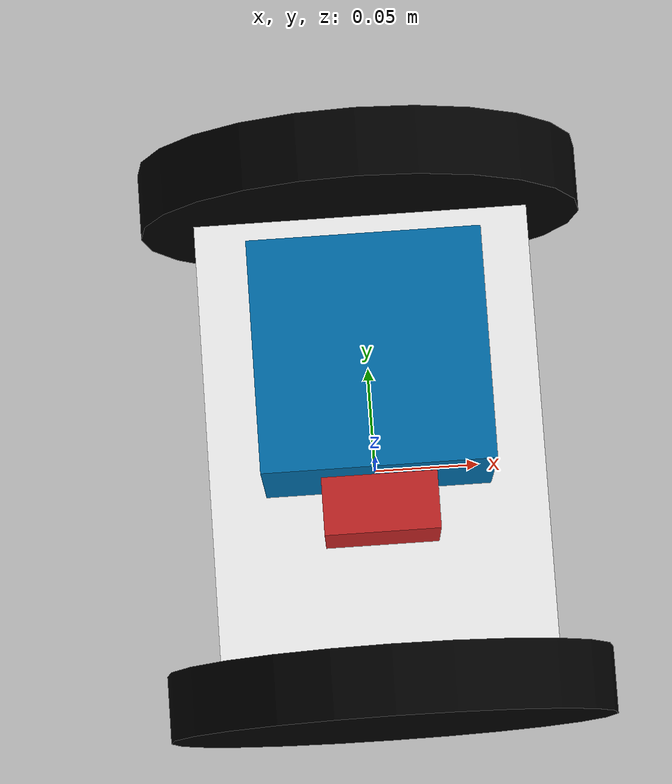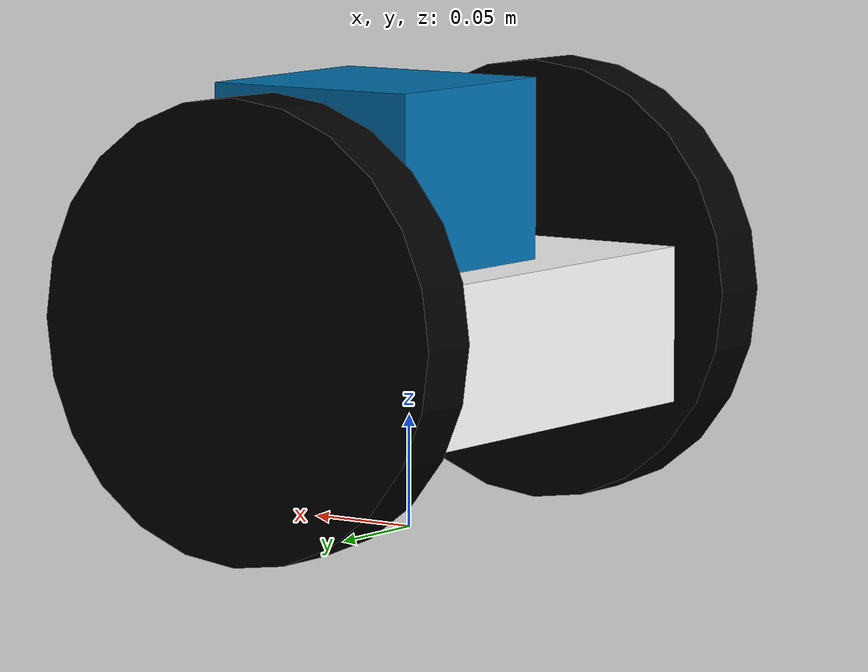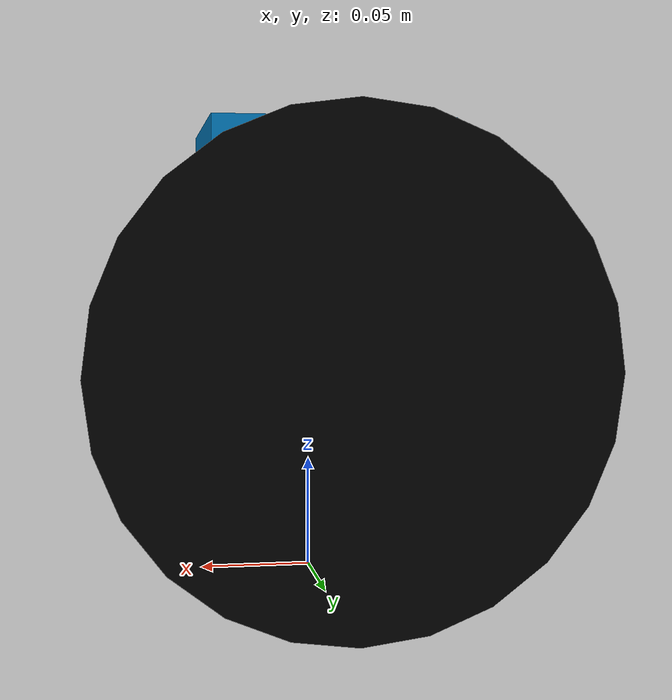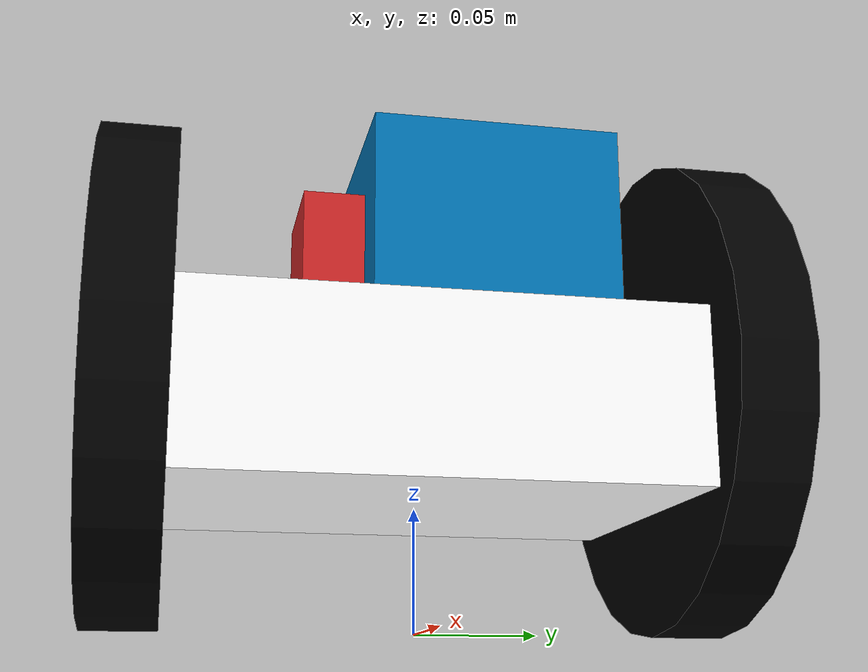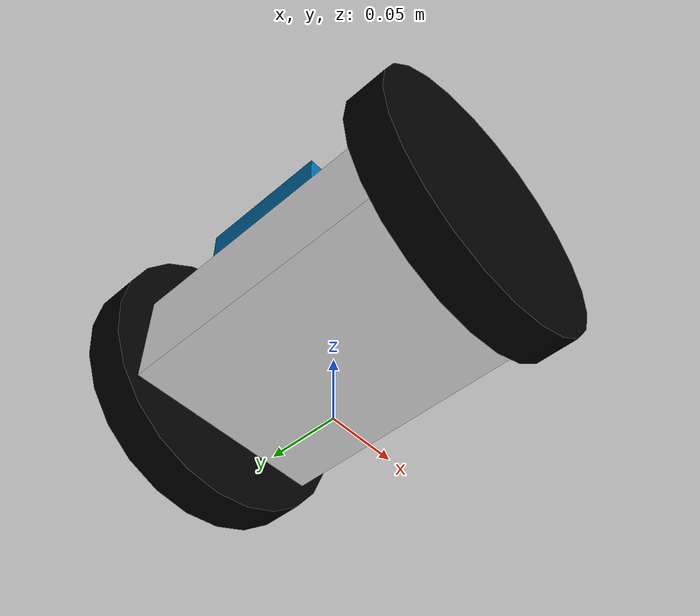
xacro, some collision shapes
<?xml version="1.0"?>

<robot xmlns:xacro="http://www.ros.org/wiki/xacro" name="robot_model">
    <!-- impoer file parameter เข้ามาจากโฟลเดอร์เพื่อใช้รวมกับไฟล์นี้ เป็นไฟล์กำหนดค่าตัวแปรต่างๆ -->
    <xacro:include filename="$(find ros_pack)/models/parameter.xacro"/>
    <!-- impoer file ที่ใช้เพื่อประกอบเป็นหุ่น -->
    <xacro:include filename="$(find ros_pack)/models/body.xacro"/>
    <xacro:include filename="$(find ros_pack)/models/wheel.xacro"/>
     <!-- impoer file กล้องและlidar เพื่อมาประกอบและใช้งานกับตัวหุ่น -->
    <xacro:include filename="$(find ros_pack)/lidar/lidar.xacro"/>
    <xacro:include filename="$(find ros_pack)/camera/camera.xacro"/>
    <!-- กำหนดค่าตัวแปรที่ต้องใช้ เช่น ระยะที่ทำการเลื่อนเฟรม และชื่อของเฟรมนั้นๆ -->
    <xacro:body/>
    <xacro:wheel
        name="right_wheel"
        translation="0.0 ${-((bodyLenght / 2) + 0.015)} 0.0"
        rotation="0.0 0.0 0.0"/>
    <xacro:wheel
        name="left_wheel"
        translation="0.0 ${(bodyLenght / 2) + 0.015} 0.0"
        rotation="0.0 0.0 0.0"/>

    <xacro:plidar/>
    <xacro:camera/>

</robot>

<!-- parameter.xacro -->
<!-- ระบุว่าใช้ .xacro ในการเขียน -->
<robot xmlns:xacro="http://www.ros.org/wiki/xacro">

    <!-- ค่า pi ในทางคณิตศาสตร์ -->
    <xacro:property name="PI" value="3.1415926535897931"></xacro:property>
    <!-- ตัวแปรกำหนดความกว้างของตัวหุ่น และคววามเร็วของล้อ รวมถึง damp -->
    <xacro:property name="bodyLenght" value="0.20"></xacro:property>
    <xacro:property name="U_MAX" value="10.0"></xacro:property>
    <xacro:property name="V_MAX" value="20.0"></xacro:property>
    <xacro:property name="WHEEL_JOINT_DAMP" value="0.3"></xacro:property>
    <!-- กำหนดค่า inertia and center of mass ของตัวหุ่น -->
    <xacro:property name="BASE_COM" value="0 0 -0.015"></xacro:property>
    <xacro:property name="BASE_M" value="6"></xacro:property>
    <xacro:property name="BASE_Ixx" value="0.009607873"></xacro:property>
    <xacro:property name="BASE_Ixy" value="0.00018491"></xacro:property>
    <xacro:property name="BASE_Ixz" value="0.000352663"></xacro:property>
    <xacro:property name="BASE_Iyy" value="0.010242986"></xacro:property>
    <xacro:property name="BASE_Iyz" value="0.00027809"></xacro:property>
    <xacro:property name="BASE_Izz" value="0.009654254"></xacro:property>
    <!-- กำหนดค่า inertia and center of mass ของล้อ -->
    <xacro:property name="WHEEL_COM" value="0 0 0"></xacro:property>
    <xacro:property name="WHEEL_M" value="0.3"></xacro:property>
    <xacro:property name="WHEEL_Ixx" value="0.00012052"></xacro:property>
    <xacro:property name="WHEEL_Ixy" value="0.0"></xacro:property>
    <xacro:property name="WHEEL_Ixz" value="0.0"></xacro:property>
    <xacro:property name="WHEEL_Iyy" value="0.0029397"></xacro:property>
    <xacro:property name="WHEEL_Iyz" value="0.0"></xacro:property>
    <xacro:property name="WHEEL_Izz" value="0.00012052"></xacro:property>
    <!-- กำหนดค่าขนาดความกว้างของกล้อง -->
    <xacro:property name="camera_link" value="0.05" />

</robot>

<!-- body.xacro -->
<!-- ระบุว่าใช้ .xacro ในการเขียน -->
<robot xmlns:xacro="http://www.ros.org/wiki/xacro" name="robot_body">

    <xacro:macro name="body" params="">
        <link name="base_footprint"/>
        <!--กำหนด joint ในการเชื่อมต่อระหว่าง base foot print and base link(ตัวหุ่น)-->
        <joint name="base_footprint_to_base_link" type="fixed">
            <parent link="base_footprint"/>
            <child link="base_link"/>
            <origin rpy="0.0 0.0 0.0" xyz="0.0 0.0 0.10"/>
        </joint>

        <link name="base_link">
            <!--สร้างตัวหุ่นทรงสี่เหลี่ยมผืนผ้า ขนาด 15*20*7 เซนติเมตร และกำหนดให้เป็นสีขาว รวมทั้งกำหนดค่า ineertia and center of mass ให้หุ่นยนต์ ใส่ค่า colllision ในกับหุ่นเป็นการเพิ่ม gavity-->
            <visual>
                <geometry>
                    <box size="0.15 0.20 0.07"/>
                </geometry>
                <origin rpy="0.0 0.0 0.0" xyz="0.0 0.0 -0.015"/>
                <material name="white">
                    <color rgba="1.0 1.0 1.0 1.0"/>
                </material>
            </visual>

            <inertial>
                <origin xyz="${BASE_COM}" rpy="0.0 0.0 0.0"/>
                <mass value="${BASE_M}"/>
                <inertia ixx="${BASE_Ixx}" ixy="${BASE_Ixy}" ixz="${BASE_Ixz}" iyy="${BASE_Iyy}" iyz="${BASE_Iyz}" izz="${BASE_Izz}"/>
            </inertial>
            <collision>
                <geometry>
                    <box size="0.15 0.20 0.07"/>
                </geometry>
                <origin rpy="0.0 0.0 0.0" xyz="0.0 0.0 -0.015"/>
            </collision>
        </link>

        <gazebo reference="base_link">
            <mu1>0.3</mu1>
            <mu2>0.3</mu2>
        </gazebo>

    </xacro:macro>
</robot>

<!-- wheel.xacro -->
<!-- ระบุว่าใช้ .xacro ในการเขียน -->
<robot xmlns:xacro="http://www.ros.org/wiki/xacro" name="robot_wheel">
    <!-- impoer file parameter เข้ามาจากโฟลเดอร์เพื่อใช้รวมกับไฟล์นี้ เป็นไฟล์กำหนดค่าตัวแปรต่างๆ -->
    <xacro:include filename="$(find ros_pack)/models/parameter.xacro"/>

    <xacro:macro name="wheel" params="name translation rotation">
        <link name="${name}">
            <visual>
                <geometry>
                    <cylinder length="0.03" radius="0.10"/>
                </geometry>
                <origin rpy="${-PI / 2} 0.0 0.0" xyz="0.0 0.0 0.0"/>
                <!---"${rpy_link}" xyz="${xyz_link}"/-->
                <material name="black">
                    <color rgba="0 0 0 1"/>
                </material>
            </visual>
            <inertial>
                <origin xyz="${WHEEL_COM}" rpy="0.0 0.0 0.0"/>
                <mass value="${WHEEL_M}"/>
                <inertia ixx="${WHEEL_Ixx}" ixy="${WHEEL_Ixy}" ixz="${WHEEL_Ixz}" iyy="${WHEEL_Iyy}" iyz="${WHEEL_Iyz}" izz="${WHEEL_Izz}"/>
            </inertial>
            <collision>
                <geometry>
                    <cylinder length="0.03" radius="0.10"/>
                </geometry>
                <origin rpy="${-PI / 2} 0.0 0.0" xyz="0.0 0.0 0.0"/>
                <!---"${rpy_link}" xyz="${xyz_link}"/-->
            </collision>
        </link>

        <joint name="base_link_to_${name}" type="continuous">
            <axis xyz="0.0 1.0 0.0"/>
            <parent link="base_link"/>
            <child link="${name}"/>
            <origin xyz="${translation}" rpy="${rotation}"/>
            <limit effort="${U_MAX}" velocity="${V_MAX}"/>
            <joint_properties damping="${WHEEL_JOINT_DAMP}" friction="0.0"/>
        </joint>

        <gazebo reference="${name}_wheel">
            <mu1>1</mu1>
            <mu2>1</mu2>
        </gazebo>
        <!--plugin สำหรับ differential_drive_controller-->
        <gazebo>
            <plugin name="differential_drive_controller" filename="libgazebo_ros_diff_drive.so">

                <updateRate>10</updateRate>

                <robotBaseFrame>base_link</robotBaseFrame>
                <leftJoint>base_link_to_left_wheel</leftJoint>
                <rightJoint>base_link_to_right_wheel</rightJoint>

                <wheelSeparation>0.065</wheelSeparation>
                <wheelDiameter>0.1</wheelDiameter>
                <wheelAcceleration>0.5</wheelAcceleration>
                <wheelTorque>10.0</wheelTorque>

                <commandTopic>key_teleop</commandTopic>
                <odometryTopic>odom</odometryTopic>
                <odometryFrame>odom</odometryFrame>
                <publishTf>1</publishTf>
                <publishWheelJointState>true</publishWheelJointState>
                <legacyMode>false</legacyMode>

            </plugin>
        </gazebo>

    </xacro:macro>
</robot>

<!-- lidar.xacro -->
<!--plugin camera และลิ้งที่ทำการเชื่อมต่อกับหุ่น (base link)-->
<robot xmlns:xacro="http://www.ros.org/wiki/xacro" name="plidar">

    <xacro:macro name="plidar" params="">
        <joint name="hokuyo_joint" type="fixed">
            <axis xyz="0 1 0" />
            <origin xyz="0 0.025 0.05" rpy="0 0 0"/>
            <parent link="base_link"/>
            <child link="hokuyo_link"/>
        </joint>

        <!-- Hokuyo Laser -->
        <link name="hokuyo_link">
            <collision>
                <origin xyz="0 0 0" rpy="0 0 0"/>
                <geometry>
                <box size="0.1 0.1 0.1"/>
                </geometry>
            </collision>

            <visual>
                <origin xyz="0 0 0" rpy="0 0 0"/>
                <geometry>
                    <mesh filename="package://ros_pack/lidar/hokuyo.dae"/>
                </geometry>
            </visual>

            <inertial>
                <mass value="1e-5" />
                <origin xyz="0 0 0" rpy="0 0 0"/>
                <inertia ixx="1e-6" ixy="0" ixz="0" iyy="1e-6" iyz="0" izz="1e-6" />
            </inertial>
        </link>

        <!-- hokuyo -->
        <gazebo reference="hokuyo_link">
            <sensor type="gpu_ray" name="head_hokuyo_sensor">
            <pose>0 0 0 0 0 0</pose>
            <visualize>true</visualize>
            <update_rate>40</update_rate>
            <ray>
                <scan>
                <horizontal>
                    <samples>720</samples>
                    <resolution>1</resolution>
                    <min_angle>-1.570796</min_angle>
                    <max_angle>1.570796</max_angle>
                </horizontal>
                </scan>
                <range>
                <min>0.10</min>
                <max>30.0</max>
                <resolution>0.01</resolution>
                </range>
                <noise>
                <type>gaussian</type>
                <mean>0.0</mean>
                <stddev>0.01</stddev>
                </noise>
            </ray>
            <plugin name="gazebo_ros_head_hokuyo_controller" filename="libgazebo_ros_gpu_laser.so">
                <topicName>/my_robot/laser/scan</topicName>
                <frameName>hokuyo_link</frameName>
            </plugin>
            </sensor>
        </gazebo>
    </xacro:macro>

</robot>

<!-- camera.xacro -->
<!--plugin camera และลิ้งที่ทำการเชื่อมต่อกับหุ่น (base link)-->
<robot xmlns:xacro="http://www.ros.org/wiki/xacro" name="camera">
    <xacro:include filename="$(find ros_pack)/models/parameter.xacro"/>
    <xacro:include filename="$(find ros_pack)/camera/camera_plugin_gazebo.gazebo"/>

    <xacro:macro name="camera" params="">
        <joint name="camera_joint" type="fixed">
            <axis xyz="0 1 0" />
            <origin xyz="0 -0.025 0.05" rpy="0 0 0"/>
            <parent link="base_link"/>
            <child link="camera_link"/>
        </joint>

        <!-- Camera -->
        <link name="camera_link">
            <collision>
                <origin xyz="0 0 0" rpy="0 0 0"/>
                <geometry>
                    <box size="${camera_link} ${camera_link} ${camera_link}"/>
                </geometry>
            </collision>

            <visual>
                <origin xyz="0 0 0" rpy="0 0 0"/>
                <geometry>
                    <box size="${camera_link} ${camera_link} ${camera_link}"/>
                </geometry>
                <material name="red"/>
            </visual>

            <inertial>
                <mass value="1e-5" />
                <origin xyz="0 0 0" rpy="0 0 0"/>
                <inertia ixx="1e-6" ixy="0" ixz="0" iyy="1e-6" iyz="0" izz="1e-6" />
            </inertial>
        </link>

    </xacro:macro>
</robot>
